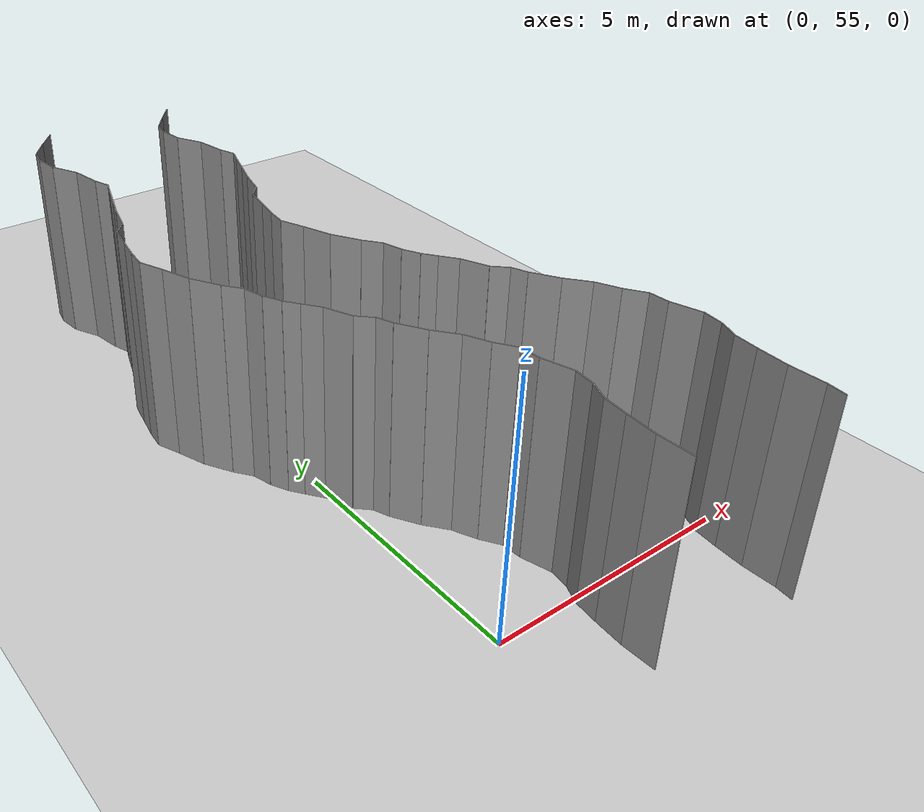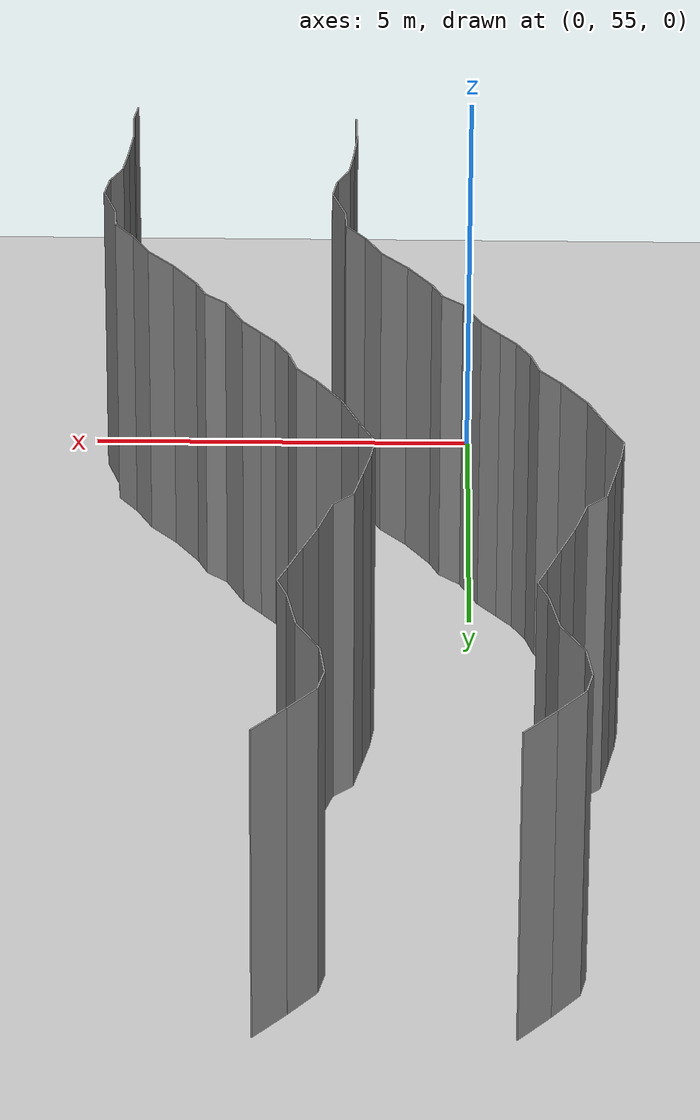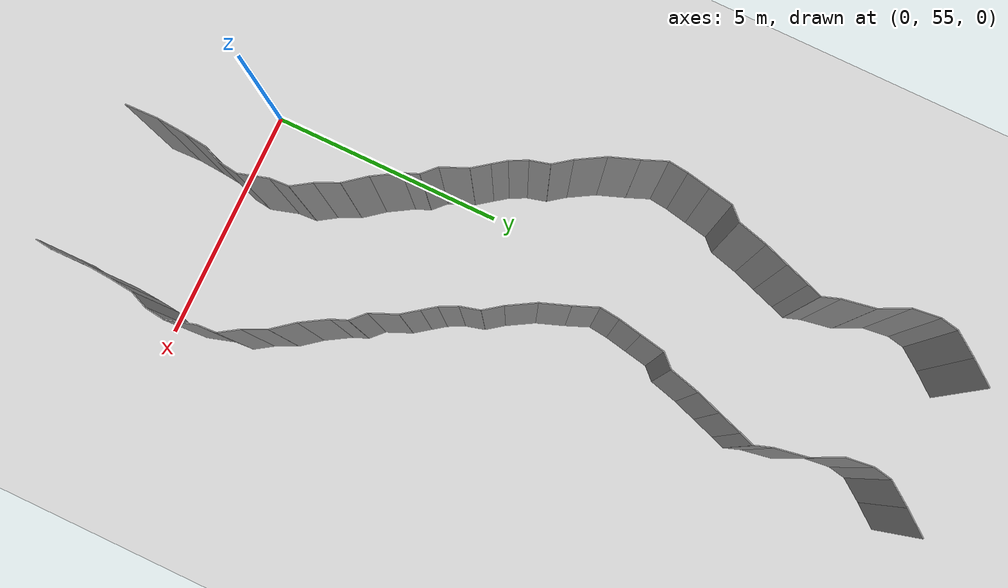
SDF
<sdf version="1.6">
 <world name="default">
  <model name="ground_plane">
   <static>1</static>
   <link name="link">
    <collision name="collision">
     <geometry><plane><normal>0 0 1</normal><size>200 200</size></plane></geometry>
     <surface><friction><ode><mu>100</mu><mu2>50</mu2></ode></friction></surface>
    </collision>
    <visual name="visual">
     <cast_shadows>0</cast_shadows>
     <geometry><plane><normal>0 0 1</normal><size>200 200</size></plane></geometry>
     <material>
      <script><uri>file://media/materials/scripts/gazebo.material</uri><name>Gazebo/Grey</name></script>
     </material>
    </visual>
   </link>
   <pose>0 100 0 0 -0 0</pose>
  </model>
  <model name="wall_225">
   <static>1</static>
   <pose>4.521135360977121 53.04856741819924 2 0 0 -0.12308509335069899</pose>
   <link name="link">
    <collision name="collision"><geometry><box><size>0.02 0.343392582881 4</size></box></geometry></collision>
    <visual name="visual">
     <material>
      <script><name>Gazebo/Grey</name><uri>file://media/materials/scripts/gazebo.material</uri></script>
     </material>
     <geometry><box><size>0.02 0.343392582881 4</size></box></geometry>
    </visual>
   </link>
  </model>
  <model name="wall_226">
   <static>1</static>
   <pose>1.5318800885487125 53.547236974459295 2 0 0 0.03147324776129947</pose>
   <link name="link">
    <collision name="collision"><geometry><box><size>0.02 0.6568697452 4</size></box></geometry></collision>
    <visual name="visual">
     <material>
      <script><name>Gazebo/Grey</name><uri>file://media/materials/scripts/gazebo.material</uri></script>
     </material>
     <geometry><box><size>0.02 0.6568697452 4</size></box></geometry>
    </visual>
   </link>
  </model>
  <model name="wall_227">
   <static>1</static>
   <pose>4.5318800885487125 53.547236974459295 2 0 0 0.03147324776129947</pose>
   <link name="link">
    <collision name="collision"><geometry><box><size>0.02 0.6568697452 4</size></box></geometry></collision>
    <visual name="visual">
     <material>
      <script><name>Gazebo/Grey</name><uri>file://media/materials/scripts/gazebo.material</uri></script>
     </material>
     <geometry><box><size>0.02 0.6568697452 4</size></box></geometry>
    </visual>
   </link>
  </model>
  <model name="wall_228">
   <static>1</static>
   <pose>1.5426626037815747 54.16363876123777 2 0 0 -0.07316163036023902</pose>
   <link name="link">
    <collision name="collision"><geometry><box><size>0.02 0.57780483411 4</size></box></geometry></collision>
    <visual name="visual">
     <material>
      <script><name>Gazebo/Grey</name><uri>file://media/materials/scripts/gazebo.material</uri></script>
     </material>
     <geometry><box><size>0.02 0.57780483411 4</size></box></geometry>
    </visual>
   </link>
  </model>
  <model name="wall_229">
   <static>1</static>
   <pose>4.542662603781575 54.16363876123777 2 0 0 -0.07316163036023902</pose>
   <link name="link">
    <collision name="collision"><geometry><box><size>0.02 0.57780483411 4</size></box></geometry></collision>
    <visual name="visual">
     <material>
      <script><name>Gazebo/Grey</name><uri>file://media/materials/scripts/gazebo.material</uri></script>
     </material>
     <geometry><box><size>0.02 0.57780483411 4</size></box></geometry>
    </visual>
   </link>
  </model>
  <model name="wall_230">
   <static>1</static>
   <pose>1.5891785267915404 54.68263615570174 2 0 0 -0.10957125878430612</pose>
   <link name="link">
    <collision name="collision"><geometry><box><size>0.02 0.464521351827 4</size></box></geometry></collision>
    <visual name="visual">
     <material>
      <script><name>Gazebo/Grey</name><uri>file://media/materials/scripts/gazebo.material</uri></script>
     </material>
     <geometry><box><size>0.02 0.464521351827 4</size></box></geometry>
    </visual>
   </link>
  </model>
  <model name="wall_231">
   <static>1</static>
   <pose>4.589178526791541 54.68263615570174 2 0 0 -0.10957125878430612</pose>
   <link name="link">
    <collision name="collision"><geometry><box><size>0.02 0.464521351827 4</size></box></geometry></collision>
    <visual name="visual">
     <material>
      <script><name>Gazebo/Grey</name><uri>file://media/materials/scripts/gazebo.material</uri></script>
     </material>
     <geometry><box><size>0.02 0.464521351827 4</size></box></geometry>
    </visual>
   </link>
  </model>
  <model name="wall_232">
   <static>1</static>
   <pose>1.6906803069146545 55.09257293223435 2 0 0 -0.4018672126688178</pose>
   <link name="link">
    <collision name="collision"><geometry><box><size>0.02 0.389139788585 4</size></box></geometry></collision>
    <visual name="visual">
     <material>
      <script><name>Gazebo/Grey</name><uri>file://media/materials/scripts/gazebo.material</uri></script>
     </material>
     <geometry><box><size>0.02 0.389139788585 4</size></box></geometry>
    </visual>
   </link>
  </model>
  <model name="wall_233">
   <static>1</static>
   <pose>4.690680306914654 55.09257293223435 2 0 0 -0.4018672126688178</pose>
   <link name="link">
    <collision name="collision"><geometry><box><size>0.02 0.389139788585 4</size></box></geometry></collision>
    <visual name="visual">
     <material>
      <script><name>Gazebo/Grey</name><uri>file://media/materials/scripts/gazebo.material</uri></script>
     </material>
     <geometry><box><size>0.02 0.389139788585 4</size></box></geometry>
    </visual>
   </link>
  </model>
  <model name="wall_234">
   <static>1</static>
   <pose>1.793089219820831 55.4680769140716 2 0 0 -0.1331216837401623</pose>
   <link name="link">
    <collision name="collision"><geometry><box><size>0.02 0.396377052906 4</size></box></geometry></collision>
    <visual name="visual">
     <material>
      <script><name>Gazebo/Grey</name><uri>file://media/materials/scripts/gazebo.material</uri></script>
     </material>
     <geometry><box><size>0.02 0.396377052906 4</size></box></geometry>
    </visual>
   </link>
  </model>
  <model name="wall_235">
   <static>1</static>
   <pose>4.793089219820831 55.4680769140716 2 0 0 -0.1331216837401623</pose>
   <link name="link">
    <collision name="collision"><geometry><box><size>0.02 0.396377052906 4</size></box></geometry></collision>
    <visual name="visual">
     <material>
      <script><name>Gazebo/Grey</name><uri>file://media/materials/scripts/gazebo.material</uri></script>
     </material>
     <geometry><box><size>0.02 0.396377052906 4</size></box></geometry>
    </visual>
   </link>
  </model>
  <model name="wall_236">
   <static>1</static>
   <pose>1.7317452355204639 55.95989317635096 2 0 0 0.2884567347603165</pose>
   <link name="link">
    <collision name="collision"><geometry><box><size>0.02 0.616222281323 4</size></box></geometry></collision>
    <visual name="visual">
     <material>
      <script><name>Gazebo/Grey</name><uri>file://media/materials/scripts/gazebo.material</uri></script>
     </material>
     <geometry><box><size>0.02 0.616222281323 4</size></box></geometry>
    </visual>
   </link>
  </model>
  <model name="wall_237">
   <static>1</static>
   <pose>4.731745235520464 55.95989317635096 2 0 0 0.2884567347603165</pose>
   <link name="link">
    <collision name="collision"><geometry><box><size>0.02 0.616222281323 4</size></box></geometry></collision>
    <visual name="visual">
     <material>
      <script><name>Gazebo/Grey</name><uri>file://media/materials/scripts/gazebo.material</uri></script>
     </material>
     <geometry><box><size>0.02 0.616222281323 4</size></box></geometry>
    </visual>
   </link>
  </model>
  <model name="wall_238">
   <static>1</static>
   <pose>1.6333251817699646 56.450081034170736 2 0 0 0.05523312908507078</pose>
   <link name="link">
    <collision name="collision"><geometry><box><size>0.02 0.390208305575 4</size></box></geometry></collision>
    <visual name="visual">
     <material>
      <script><name>Gazebo/Grey</name><uri>file://media/materials/scripts/gazebo.material</uri></script>
     </material>
     <geometry><box><size>0.02 0.390208305575 4</size></box></geometry>
    </visual>
   </link>
  </model>
  <model name="wall_239">
   <static>1</static>
   <pose>4.6333251817699646 56.450081034170736 2 0 0 0.05523312908507078</pose>
   <link name="link">
    <collision name="collision"><geometry><box><size>0.02 0.390208305575 4</size></box></geometry></collision>
    <visual name="visual">
     <material>
      <script><name>Gazebo/Grey</name><uri>file://media/materials/scripts/gazebo.material</uri></script>
     </material>
     <geometry><box><size>0.02 0.390208305575 4</size></box></geometry>
    </visual>
   </link>
  </model>
  <model name="wall_240">
   <static>1</static>
   <pose>1.4973220071269142 56.83547005621383 2 0 0 0.5813529927502384</pose>
   <link name="link">
    <collision name="collision"><geometry><box><size>0.02 0.456091278423 4</size></box></geometry></collision>
    <visual name="visual">
     <material>
      <script><name>Gazebo/Grey</name><uri>file://media/materials/scripts/gazebo.material</uri></script>
     </material>
     <geometry><box><size>0.02 0.456091278423 4</size></box></geometry>
    </visual>
   </link>
  </model>
  <model name="wall_241">
   <static>1</static>
   <pose>4.497322007126915 56.83547005621383 2 0 0 0.5813529927502384</pose>
   <link name="link">
    <collision name="collision"><geometry><box><size>0.02 0.456091278423 4</size></box></geometry></collision>
    <visual name="visual">
     <material>
      <script><name>Gazebo/Grey</name><uri>file://media/materials/scripts/gazebo.material</uri></script>
     </material>
     <geometry><box><size>0.02 0.456091278423 4</size></box></geometry>
    </visual>
   </link>
  </model>
  <model name="wall_242">
   <static>1</static>
   <pose>1.2655383694440323 57.252003256304434 2 0 0 0.44064451379595043</pose>
   <link name="link">
    <collision name="collision"><geometry><box><size>0.02 0.499627556329 4</size></box></geometry></collision>
    <visual name="visual">
     <material>
      <script><name>Gazebo/Grey</name><uri>file://media/materials/scripts/gazebo.material</uri></script>
     </material>
     <geometry><box><size>0.02 0.499627556329 4</size></box></geometry>
    </visual>
   </link>
  </model>
  <model name="wall_243">
   <static>1</static>
   <pose>4.265538369444032 57.252003256304434 2 0 0 0.44064451379595043</pose>
   <link name="link">
    <collision name="collision"><geometry><box><size>0.02 0.499627556329 4</size></box></geometry></collision>
    <visual name="visual">
     <material>
      <script><name>Gazebo/Grey</name><uri>file://media/materials/scripts/gazebo.material</uri></script>
     </material>
     <geometry><box><size>0.02 0.499627556329 4</size></box></geometry>
    </visual>
   </link>
  </model>
  <model name="wall_244">
   <static>1</static>
   <pose>0.9898197506736742 57.68989863021387 2 0 0 0.6736230090625466</pose>
   <link name="link">
    <collision name="collision"><geometry><box><size>0.02 0.542358246531 4</size></box></geometry></collision>
    <visual name="visual">
     <material>
      <script><name>Gazebo/Grey</name><uri>file://media/materials/scripts/gazebo.material</uri></script>
     </material>
     <geometry><box><size>0.02 0.542358246531 4</size></box></geometry>
    </visual>
   </link>
  </model>
  <model name="wall_245">
   <static>1</static>
   <pose>3.989819750673674 57.68989863021387 2 0 0 0.6736230090625466</pose>
   <link name="link">
    <collision name="collision"><geometry><box><size>0.02 0.542358246531 4</size></box></geometry></collision>
    <visual name="visual">
     <material>
      <script><name>Gazebo/Grey</name><uri>file://media/materials/scripts/gazebo.material</uri></script>
     </material>
     <geometry><box><size>0.02 0.542358246531 4</size></box></geometry>
    </visual>
   </link>
  </model>
  <model name="wall_246">
   <static>1</static>
   <pose>0.6641813570523917 58.159657947217745 2 0 0 0.5454866658374737</pose>
   <link name="link">
    <collision name="collision"><geometry><box><size>0.02 0.60316369019 4</size></box></geometry></collision>
    <visual name="visual">
     <material>
      <script><name>Gazebo/Grey</name><uri>file://media/materials/scripts/gazebo.material</uri></script>
     </material>
     <geometry><box><size>0.02 0.60316369019 4</size></box></geometry>
    </visual>
   </link>
  </model>
  <model name="wall_247">
   <static>1</static>
   <pose>3.664181357052392 58.159657947217745 2 0 0 0.5454866658374737</pose>
   <link name="link">
    <collision name="collision"><geometry><box><size>0.02 0.60316369019 4</size></box></geometry></collision>
    <visual name="visual">
     <material>
      <script><name>Gazebo/Grey</name><uri>file://media/materials/scripts/gazebo.material</uri></script>
     </material>
     <geometry><box><size>0.02 0.60316369019 4</size></box></geometry>
    </visual>
   </link>
  </model>
  <model name="wall_248">
   <static>1</static>
   <pose>0.4463893324645613 58.5715226269095 2 0 0 0.3788324878437734</pose>
   <link name="link">
    <collision name="collision"><geometry><box><size>0.02 0.331612141008 4</size></box></geometry></collision>
    <visual name="visual">
     <material>
      <script><name>Gazebo/Grey</name><uri>file://media/materials/scripts/gazebo.material</uri></script>
     </material>
     <geometry><box><size>0.02 0.331612141008 4</size></box></geometry>
    </visual>
   </link>
  </model>
  <model name="wall_249">
   <static>1</static>
   <pose>3.446389332464561 58.5715226269095 2 0 0 0.3788324878437734</pose>
   <link name="link">
    <collision name="collision"><geometry><box><size>0.02 0.331612141008 4</size></box></geometry></collision>
    <visual name="visual">
     <material>
      <script><name>Gazebo/Grey</name><uri>file://media/materials/scripts/gazebo.material</uri></script>
     </material>
     <geometry><box><size>0.02 0.331612141008 4</size></box></geometry>
    </visual>
   </link>
  </model>
  <model name="wall_250">
   <static>1</static>
   <pose>0.2506414810446743 58.8559154217721 2 0 0 0.8008214283508729</pose>
   <link name="link">
    <collision name="collision"><geometry><box><size>0.02 0.374485386806 4</size></box></geometry></collision>
    <visual name="visual">
     <material>
      <script><name>Gazebo/Grey</name><uri>file://media/materials/scripts/gazebo.material</uri></script>
     </material>
     <geometry><box><size>0.02 0.374485386806 4</size></box></geometry>
    </visual>
   </link>
  </model>
  <model name="wall_251">
   <static>1</static>
   <pose>3.250641481044674 58.8559154217721 2 0 0 0.8008214283508729</pose>
   <link name="link">
    <collision name="collision"><geometry><box><size>0.02 0.374485386806 4</size></box></geometry></collision>
    <visual name="visual">
     <material>
      <script><name>Gazebo/Grey</name><uri>file://media/materials/scripts/gazebo.material</uri></script>
     </material>
     <geometry><box><size>0.02 0.374485386806 4</size></box></geometry>
    </visual>
   </link>
  </model>
  <model name="wall_252">
   <static>1</static>
   <pose>0.0021937016465015113 59.250471920405964 2 0 0 0.40740412721964625</pose>
   <link name="link">
    <collision name="collision"><geometry><box><size>0.02 0.575533245916 4</size></box></geometry></collision>
    <visual name="visual">
     <material>
      <script><name>Gazebo/Grey</name><uri>file://media/materials/scripts/gazebo.material</uri></script>
     </material>
     <geometry><box><size>0.02 0.575533245916 4</size></box></geometry>
    </visual>
   </link>
  </model>
  <model name="wall_253">
   <static>1</static>
   <pose>3.0021937016465015 59.250471920405964 2 0 0 0.40740412721964625</pose>
   <link name="link">
    <collision name="collision"><geometry><box><size>0.02 0.575533245916 4</size></box></geometry></collision>
    <visual name="visual">
     <material>
      <script><name>Gazebo/Grey</name><uri>file://media/materials/scripts/gazebo.material</uri></script>
     </material>
     <geometry><box><size>0.02 0.575533245916 4</size></box></geometry>
    </visual>
   </link>
  </model>
  <model name="wall_254">
   <static>1</static>
   <pose>-0.23026401594293788 59.6739307323708 2 0 0 0.6394815647355245</pose>
   <link name="link">
    <collision name="collision"><geometry><box><size>0.02 0.396919573155 4</size></box></geometry></collision>
    <visual name="visual">
     <material>
      <script><name>Gazebo/Grey</name><uri>file://media/materials/scripts/gazebo.material</uri></script>
     </material>
     <geometry><box><size>0.02 0.396919573155 4</size></box></geometry>
    </visual>
   </link>
  </model>
  <model name="wall_255">
   <static>1</static>
   <pose>2.7697359840570623 59.6739307323708 2 0 0 0.6394815647355245</pose>
   <link name="link">
    <collision name="collision"><geometry><box><size>0.02 0.396919573155 4</size></box></geometry></collision>
    <visual name="visual">
     <material>
      <script><name>Gazebo/Grey</name><uri>file://media/materials/scripts/gazebo.material</uri></script>
     </material>
     <geometry><box><size>0.02 0.396919573155 4</size></box></geometry>
    </visual>
   </link>
  </model>
  <model name="wall_256">
   <static>1</static>
   <pose>-0.44527389648842214 59.96493190527335 2 0 0 0.6325122761577108</pose>
   <link name="link">
    <collision name="collision"><geometry><box><size>0.02 0.326717092673 4</size></box></geometry></collision>
    <visual name="visual">
     <material>
      <script><name>Gazebo/Grey</name><uri>file://media/materials/scripts/gazebo.material</uri></script>
     </material>
     <geometry><box><size>0.02 0.326717092673 4</size></box></geometry>
    </visual>
   </link>
  </model>
  <model name="wall_257">
   <static>1</static>
   <pose>2.554726103511578 59.96493190527335 2 0 0 0.6325122761577108</pose>
   <link name="link">
    <collision name="collision"><geometry><box><size>0.02 0.326717092673 4</size></box></geometry></collision>
    <visual name="visual">
     <material>
      <script><name>Gazebo/Grey</name><uri>file://media/materials/scripts/gazebo.material</uri></script>
     </material>
     <geometry><box><size>0.02 0.326717092673 4</size></box></geometry>
    </visual>
   </link>
  </model>
  <model name="wall_258">
   <static>1</static>
   <pose>-0.6277646872286103 60.26754599050072 2 0 0 0.46593275365028297</pose>
   <link name="link">
    <collision name="collision"><geometry><box><size>0.02 0.382488319074 4</size></box></geometry></collision>
    <visual name="visual">
     <material>
      <script><name>Gazebo/Grey</name><uri>file://media/materials/scripts/gazebo.material</uri></script>
     </material>
     <geometry><box><size>0.02 0.382488319074 4</size></box></geometry>
    </visual>
   </link>
  </model>
  <model name="wall_259">
   <static>1</static>
   <pose>2.3722353127713895 60.26754599050072 2 0 0 0.46593275365028297</pose>
   <link name="link">
    <collision name="collision"><geometry><box><size>0.02 0.382488319074 4</size></box></geometry></collision>
    <visual name="visual">
     <material>
      <script><name>Gazebo/Grey</name><uri>file://media/materials/scripts/gazebo.material</uri></script>
     </material>
     <geometry><box><size>0.02 0.382488319074 4</size></box></geometry>
    </visual>
   </link>
  </model>
  <model name="wall_260">
   <static>1</static>
   <pose>-0.7669233280408421 60.638004558542946 2 0 0 0.2606688030595077</pose>
   <link name="link">
    <collision name="collision"><geometry><box><size>0.02 0.413158346479 4</size></box></geometry></collision>
    <visual name="visual">
     <material>
      <script><name>Gazebo/Grey</name><uri>file://media/materials/scripts/gazebo.material</uri></script>
     </material>
     <geometry><box><size>0.02 0.413158346479 4</size></box></geometry>
    </visual>
   </link>
  </model>
  <model name="wall_261">
   <static>1</static>
   <pose>2.233076671959158 60.638004558542946 2 0 0 0.2606688030595077</pose>
   <link name="link">
    <collision name="collision"><geometry><box><size>0.02 0.413158346479 4</size></box></geometry></collision>
    <visual name="visual">
     <material>
      <script><name>Gazebo/Grey</name><uri>file://media/materials/scripts/gazebo.material</uri></script>
     </material>
     <geometry><box><size>0.02 0.413158346479 4</size></box></geometry>
    </visual>
   </link>
  </model>
  <model name="wall_262">
   <static>1</static>
   <pose>-0.9489604529135394 61.010785571165016 2 0 0 0.6394634792404611</pose>
   <link name="link">
    <collision name="collision"><geometry><box><size>0.02 0.431647729304 4</size></box></geometry></collision>
    <visual name="visual">
     <material>
      <script><name>Gazebo/Grey</name><uri>file://media/materials/scripts/gazebo.material</uri></script>
     </material>
     <geometry><box><size>0.02 0.431647729304 4</size></box></geometry>
    </visual>
   </link>
  </model>
  <model name="wall_263">
   <static>1</static>
   <pose>2.051039547086461 61.010785571165016 2 0 0 0.6394634792404611</pose>
   <link name="link">
    <collision name="collision"><geometry><box><size>0.02 0.431647729304 4</size></box></geometry></collision>
    <visual name="visual">
     <material>
      <script><name>Gazebo/Grey</name><uri>file://media/materials/scripts/gazebo.material</uri></script>
     </material>
     <geometry><box><size>0.02 0.431647729304 4</size></box></geometry>
    </visual>
   </link>
  </model>
  <model name="wall_264">
   <static>1</static>
   <pose>-1.2364163874082608 61.45495242658995 2 0 0 0.529682114619405</pose>
   <link name="link">
    <collision name="collision"><geometry><box><size>0.02 0.628033502165 4</size></box></geometry></collision>
    <visual name="visual">
     <material>
      <script><name>Gazebo/Grey</name><uri>file://media/materials/scripts/gazebo.material</uri></script>
     </material>
     <geometry><box><size>0.02 0.628033502165 4</size></box></geometry>
    </visual>
   </link>
  </model>
  <model name="wall_265">
   <static>1</static>
   <pose>1.7635836125917392 61.45495242658995 2 0 0 0.529682114619405</pose>
   <link name="link">
    <collision name="collision"><geometry><box><size>0.02 0.628033502165 4</size></box></geometry></collision>
    <visual name="visual">
     <material>
      <script><name>Gazebo/Grey</name><uri>file://media/materials/scripts/gazebo.material</uri></script>
     </material>
     <geometry><box><size>0.02 0.628033502165 4</size></box></geometry>
    </visual>
   </link>
  </model>
  <model name="wall_266">
   <static>1</static>
   <pose>-1.5013281441844726 62.01570366291428 2 0 0 0.3514594533550606</pose>
   <link name="link">
    <collision name="collision"><geometry><box><size>0.02 0.617262288031 4</size></box></geometry></collision>
    <visual name="visual">
     <material>
      <script><name>Gazebo/Grey</name><uri>file://media/materials/scripts/gazebo.material</uri></script>
     </material>
     <geometry><box><size>0.02 0.617262288031 4</size></box></geometry>
    </visual>
   </link>
  </model>
  <model name="wall_267">
   <static>1</static>
   <pose>1.4986718558155274 62.01570366291428 2 0 0 0.3514594533550606</pose>
   <link name="link">
    <collision name="collision"><geometry><box><size>0.02 0.617262288031 4</size></box></geometry></collision>
    <visual name="visual">
     <material>
      <script><name>Gazebo/Grey</name><uri>file://media/materials/scripts/gazebo.material</uri></script>
     </material>
     <geometry><box><size>0.02 0.617262288031 4</size></box></geometry>
    </visual>
   </link>
  </model>
  <model name="wall_268">
   <static>1</static>
   <pose>-1.705795614949101 62.54658127042579 2 0 0 0.38682029565798454</pose>
   <link name="link">
    <collision name="collision"><geometry><box><size>0.02 0.520698065118 4</size></box></geometry></collision>
    <visual name="visual">
     <material>
      <script><name>Gazebo/Grey</name><uri>file://media/materials/scripts/gazebo.material</uri></script>
     </material>
     <geometry><box><size>0.02 0.520698065118 4</size></box></geometry>
    </visual>
   </link>
  </model>
  <model name="wall_269">
   <static>1</static>
   <pose>1.294204385050899 62.54658127042579 2 0 0 0.38682029565798454</pose>
   <link name="link">
    <collision name="collision"><geometry><box><size>0.02 0.520698065118 4</size></box></geometry></collision>
    <visual name="visual">
     <material>
      <script><name>Gazebo/Grey</name><uri>file://media/materials/scripts/gazebo.material</uri></script>
     </material>
     <geometry><box><size>0.02 0.520698065118 4</size></box></geometry>
    </visual>
   </link>
  </model>
  <model name="wall_270">
   <static>1</static>
   <pose>-1.780647243362121 62.9915844499877 2 0 0 -0.11409273503173797</pose>
   <link name="link">
    <collision name="collision"><geometry><box><size>0.02 0.410449517208 4</size></box></geometry></collision>
    <visual name="visual">
     <material>
      <script><name>Gazebo/Grey</name><uri>file://media/materials/scripts/gazebo.material</uri></script>
     </material>
     <geometry><box><size>0.02 0.410449517208 4</size></box></geometry>
    </visual>
   </link>
  </model>
  <model name="wall_271">
   <static>1</static>
   <pose>1.219352756637879 62.9915844499877 2 0 0 -0.11409273503173797</pose>
   <link name="link">
    <collision name="collision"><geometry><box><size>0.02 0.410449517208 4</size></box></geometry></collision>
    <visual name="visual">
     <material>
      <script><name>Gazebo/Grey</name><uri>file://media/materials/scripts/gazebo.material</uri></script>
     </material>
     <geometry><box><size>0.02 0.410449517208 4</size></box></geometry>
    </visual>
   </link>
  </model>
  <model name="wall_272">
   <static>1</static>
   <pose>-1.7113284598682432 63.43216076048097 2 0 0 -0.19177382081852729</pose>
   <link name="link">
    <collision name="collision"><geometry><box><size>0.02 0.48221170422 4</size></box></geometry></collision>
    <visual name="visual">
     <material>
      <script><name>Gazebo/Grey</name><uri>file://media/materials/scripts/gazebo.material</uri></script>
     </material>
     <geometry><box><size>0.02 0.48221170422 4</size></box></geometry>
    </visual>
   </link>
  </model>
  <model name="wall_273">
   <static>1</static>
   <pose>1.2886715401317568 63.43216076048097 2 0 0 -0.19177382081852729</pose>
   <link name="link">
    <collision name="collision"><geometry><box><size>0.02 0.48221170422 4</size></box></geometry></collision>
    <visual name="visual">
     <material>
      <script><name>Gazebo/Grey</name><uri>file://media/materials/scripts/gazebo.material</uri></script>
     </material>
     <geometry><box><size>0.02 0.48221170422 4</size></box></geometry>
    </visual>
   </link>
  </model>
  <model name="wall_274">
   <static>1</static>
   <pose>-1.6156633730305816 63.92588714911311 2 0 0 -0.19103597612592355</pose>
   <link name="link">
    <collision name="collision"><geometry><box><size>0.02 0.523606549812 4</size></box></geometry></collision>
    <visual name="visual">
     <material>
      <script><name>Gazebo/Grey</name><uri>file://media/materials/scripts/gazebo.material</uri></script>
     </material>
     <geometry><box><size>0.02 0.523606549812 4</size></box></geometry>
    </visual>
   </link>
  </model>
  <model name="wall_275">
   <static>1</static>
   <pose>1.3843366269694184 63.92588714911311 2 0 0 -0.19103597612592355</pose>
   <link name="link">
    <collision name="collision"><geometry><box><size>0.02 0.523606549812 4</size></box></geometry></collision>
    <visual name="visual">
     <material>
      <script><name>Gazebo/Grey</name><uri>file://media/materials/scripts/gazebo.material</uri></script>
     </material>
     <geometry><box><size>0.02 0.523606549812 4</size></box></geometry>
    </visual>
   </link>
  </model>
  <model name="wall_276">
   <static>1</static>
   <pose>-1.4451274575894326 64.31001936062651 2 0 0 -0.7601293007275328</pose>
   <link name="link">
    <collision name="collision"><geometry><box><size>0.02 0.350720072746 4</size></box></geometry></collision>
    <visual name="visual">
     <material>
      <script><name>Gazebo/Grey</name><uri>file://media/materials/scripts/gazebo.material</uri></script>
     </material>
     <geometry><box><size>0.02 0.350720072746 4</size></box></geometry>
    </visual>
   </link>
  </model>
  <model name="wall_277">
   <static>1</static>
   <pose>1.5548725424105674 64.31001936062651 2 0 0 -0.7601293007275328</pose>
   <link name="link">
    <collision name="collision"><geometry><box><size>0.02 0.350720072746 4</size></box></geometry></collision>
    <visual name="visual">
     <material>
      <script><name>Gazebo/Grey</name><uri>file://media/materials/scripts/gazebo.material</uri></script>
     </material>
     <geometry><box><size>0.02 0.350720072746 4</size></box></geometry>
    </visual>
   </link>
  </model>
  <model name="wall_278">
   <static>1</static>
   <pose>-1.2424476685226182 64.74474901542601 2 0 0 -0.26004774652542945</pose>
   <link name="link">
    <collision name="collision"><geometry><box><size>0.02 0.636682751767 4</size></box></geometry></collision>
    <visual name="visual">
     <material>
      <script><name>Gazebo/Grey</name><uri>file://media/materials/scripts/gazebo.material</uri></script>
     </material>
     <geometry><box><size>0.02 0.636682751767 4</size></box></geometry>
    </visual>
   </link>
  </model>
  <model name="wall_279">
   <static>1</static>
   <pose>1.7575523314773818 64.74474901542601 2 0 0 -0.26004774652542945</pose>
   <link name="link">
    <collision name="collision"><geometry><box><size>0.02 0.636682751767 4</size></box></geometry></collision>
    <visual name="visual">
     <material>
      <script><name>Gazebo/Grey</name><uri>file://media/materials/scripts/gazebo.material</uri></script>
     </material>
     <geometry><box><size>0.02 0.636682751767 4</size></box></geometry>
    </visual>
   </link>
  </model>
  <model name="wall_280">
   <static>1</static>
   <pose>-1.0742758765486833 65.30246194546149 2 0 0 -0.3323631939048959</pose>
   <link name="link">
    <collision name="collision"><geometry><box><size>0.02 0.529105724296 4</size></box></geometry></collision>
    <visual name="visual">
     <material>
      <script><name>Gazebo/Grey</name><uri>file://media/materials/scripts/gazebo.material</uri></script>
     </material>
     <geometry><box><size>0.02 0.529105724296 4</size></box></geometry>
    </visual>
   </link>
  </model>
  <model name="wall_281">
   <static>1</static>
   <pose>1.9257241234513167 65.30246194546149 2 0 0 -0.3323631939048959</pose>
   <link name="link">
    <collision name="collision"><geometry><box><size>0.02 0.529105724296 4</size></box></geometry></collision>
    <visual name="visual">
     <material>
      <script><name>Gazebo/Grey</name><uri>file://media/materials/scripts/gazebo.material</uri></script>
     </material>
     <geometry><box><size>0.02 0.529105724296 4</size></box></geometry>
    </visual>
   </link>
  </model>
  <model name="wall_282">
   <static>1</static>
   <pose>-0.9040182594878716 65.80289151840475 2 0 0 -0.3235050606859876</pose>
   <link name="link">
    <collision name="collision"><geometry><box><size>0.02 0.528103611528 4</size></box></geometry></collision>
    <visual name="visual">
     <material>
      <script><name>Gazebo/Grey</name><uri>file://media/materials/scripts/gazebo.material</uri></script>
     </material>
     <geometry><box><size>0.02 0.528103611528 4</size></box></geometry>
    </visual>
   </link>
  </model>
  <model name="wall_283">
   <static>1</static>
   <pose>2.095981740512128 65.80289151840475 2 0 0 -0.3235050606859876</pose>
   <link name="link">
    <collision name="collision"><geometry><box><size>0.02 0.528103611528 4</size></box></geometry></collision>
    <visual name="visual">
     <material>
      <script><name>Gazebo/Grey</name><uri>file://media/materials/scripts/gazebo.material</uri></script>
     </material>
     <geometry><box><size>0.02 0.528103611528 4</size></box></geometry>
    </visual>
   </link>
  </model>
  <model name="wall_284">
   <static>1</static>
   <pose>-0.7665324729758466 66.20096106018934 2 0 0 -0.3477624877424924</pose>
   <link name="link">
    <collision name="collision"><geometry><box><size>0.02 0.314241004049 4</size></box></geometry></collision>
    <visual name="visual">
     <material>
      <script><name>Gazebo/Grey</name><uri>file://media/materials/scripts/gazebo.material</uri></script>
     </material>
     <geometry><box><size>0.02 0.314241004049 4</size></box></geometry>
    </visual>
   </link>
  </model>
  <model name="wall_285">
   <static>1</static>
   <pose>2.2334675270241533 66.20096106018934 2 0 0 -0.3477624877424924</pose>
   <link name="link">
    <collision name="collision"><geometry><box><size>0.02 0.314241004049 4</size></box></geometry></collision>
    <visual name="visual">
     <material>
      <script><name>Gazebo/Grey</name><uri>file://media/materials/scripts/gazebo.material</uri></script>
     </material>
     <geometry><box><size>0.02 0.314241004049 4</size></box></geometry>
    </visual>
   </link>
  </model>
  <model name="wall_286">
   <static>1</static>
   <pose>-0.7730611883976898 66.52302052991247 2 0 0 0.3318328266041908</pose>
   <link name="link">
    <collision name="collision"><geometry><box><size>0.02 0.368808844284 4</size></box></geometry></collision>
    <visual name="visual">
     <material>
      <script><name>Gazebo/Grey</name><uri>file://media/materials/scripts/gazebo.material</uri></script>
     </material>
     <geometry><box><size>0.02 0.368808844284 4</size></box></geometry>
    </visual>
   </link>
  </model>
  <model name="wall_287">
   <static>1</static>
   <pose>2.2269388116023103 66.52302052991247 2 0 0 0.3318328266041908</pose>
   <link name="link">
    <collision name="collision"><geometry><box><size>0.02 0.368808844284 4</size></box></geometry></collision>
    <visual name="visual">
     <material>
      <script><name>Gazebo/Grey</name><uri>file://media/materials/scripts/gazebo.material</uri></script>
     </material>
     <geometry><box><size>0.02 0.368808844284 4</size></box></geometry>
    </visual>
   </link>
  </model>
  <model name="wall_288">
   <static>1</static>
   <pose>-0.8915333555573435 67.03328094086014 2 0 0 0.17212554148430154</pose>
   <link name="link">
    <collision name="collision"><geometry><box><size>0.02 0.681908267078 4</size></box></geometry></collision>
    <visual name="visual">
     <material>
      <script><name>Gazebo/Grey</name><uri>file://media/materials/scripts/gazebo.material</uri></script>
     </material>
     <geometry><box><size>0.02 0.681908267078 4</size></box></geometry>
    </visual>
   </link>
  </model>
  <model name="wall_289">
   <static>1</static>
   <pose>2.1084666444426565 67.03328094086014 2 0 0 0.17212554148430154</pose>
   <link name="link">
    <collision name="collision"><geometry><box><size>0.02 0.681908267078 4</size></box></geometry></collision>
    <visual name="visual">
     <material>
      <script><name>Gazebo/Grey</name><uri>file://media/materials/scripts/gazebo.material</uri></script>
     </material>
     <geometry><box><size>0.02 0.681908267078 4</size></box></geometry>
    </visual>
   </link>
  </model>
  <model name="wall_290">
   <static>1</static>
   <pose>-1.0917602384616842 67.65815210996035 2 0 0 0.456288581759731</pose>
   <link name="link">
    <collision name="collision"><geometry><box><size>0.02 0.643772458223 4</size></box></geometry></collision>
    <visual name="visual">
     <material>
      <script><name>Gazebo/Grey</name><uri>file://media/materials/scripts/gazebo.material</uri></script>
     </material>
     <geometry><box><size>0.02 0.643772458223 4</size></box></geometry>
    </visual>
   </link>
  </model>
  <model name="wall_291">
   <static>1</static>
   <pose>1.9082397615383158 67.65815210996035 2 0 0 0.456288581759731</pose>
   <link name="link">
    <collision name="collision"><geometry><box><size>0.02 0.643772458223 4</size></box></geometry></collision>
    <visual name="visual">
     <material>
      <script><name>Gazebo/Grey</name><uri>file://media/materials/scripts/gazebo.material</uri></script>
     </material>
     <geometry><box><size>0.02 0.643772458223 4</size></box></geometry>
    </visual>
   </link>
  </model>
  <model name="wall_292">
   <static>1</static>
   <pose>-1.2656061829655472 68.22433954676998 2 0 0 0.11497733635905726</pose>
   <link name="link">
    <collision name="collision"><geometry><box><size>0.02 0.558149446969 4</size></box></geometry></collision>
    <visual name="visual">
     <material>
      <script><name>Gazebo/Grey</name><uri>file://media/materials/scripts/gazebo.material</uri></script>
     </material>
     <geometry><box><size>0.02 0.558149446969 4</size></box></geometry>
    </visual>
   </link>
  </model>
  <model name="wall_293">
   <static>1</static>
   <pose>1.7343938170344528 68.22433954676998 2 0 0 0.11497733635905726</pose>
   <link name="link">
    <collision name="collision"><geometry><box><size>0.02 0.558149446969 4</size></box></geometry></collision>
    <visual name="visual">
     <material>
      <script><name>Gazebo/Grey</name><uri>file://media/materials/scripts/gazebo.material</uri></script>
     </material>
     <geometry><box><size>0.02 0.558149446969 4</size></box></geometry>
    </visual>
   </link>
  </model>
  <model name="wall_294">
   <static>1</static>
   <pose>-1.2613682081292206 68.68579977860074 2 0 0 -0.1943088915480931</pose>
   <link name="link">
    <collision name="collision"><geometry><box><size>0.02 0.375523101009 4</size></box></geometry></collision>
    <visual name="visual">
     <material>
      <script><name>Gazebo/Grey</name><uri>file://media/materials/scripts/gazebo.material</uri></script>
     </material>
     <geometry><box><size>0.02 0.375523101009 4</size></box></geometry>
    </visual>
   </link>
  </model>
  <model name="wall_295">
   <static>1</static>
   <pose>1.7386317918707794 68.68579977860074 2 0 0 -0.1943088915480931</pose>
   <link name="link">
    <collision name="collision"><geometry><box><size>0.02 0.375523101009 4</size></box></geometry></collision>
    <visual name="visual">
     <material>
      <script><name>Gazebo/Grey</name><uri>file://media/materials/scripts/gazebo.material</uri></script>
     </material>
     <geometry><box><size>0.02 0.375523101009 4</size></box></geometry>
    </visual>
   </link>
  </model>
  <model name="wall_296">
   <static>1</static>
   <pose>-1.055609355707864 69.1026507371744 2 0 0 -0.6297067205989568</pose>
   <link name="link">
    <collision name="collision"><geometry><box><size>0.02 0.575656404434 4</size></box></geometry></collision>
    <visual name="visual">
     <material>
      <script><name>Gazebo/Grey</name><uri>file://media/materials/scripts/gazebo.material</uri></script>
     </material>
     <geometry><box><size>0.02 0.575656404434 4</size></box></geometry>
    </visual>
   </link>
  </model>
  <model name="wall_297">
   <static>1</static>
   <pose>1.944390644292136 69.1026507371744 2 0 0 -0.6297067205989568</pose>
   <link name="link">
    <collision name="collision"><geometry><box><size>0.02 0.575656404434 4</size></box></geometry></collision>
    <visual name="visual">
     <material>
      <script><name>Gazebo/Grey</name><uri>file://media/materials/scripts/gazebo.material</uri></script>
     </material>
     <geometry><box><size>0.02 0.575656404434 4</size></box></geometry>
    </visual>
   </link>
  </model>
  <model name="wall_298">
   <static>1</static>
   <pose>-0.6928163126176649 69.57831282346444 2 0 0 -0.6718676538882192</pose>
   <link name="link">
    <collision name="collision"><geometry><box><size>0.02 0.621059208171 4</size></box></geometry></collision>
    <visual name="visual">
     <material>
      <script><name>Gazebo/Grey</name><uri>file://media/materials/scripts/gazebo.material</uri></script>
     </material>
     <geometry><box><size>0.02 0.621059208171 4</size></box></geometry>
    </visual>
   </link>
  </model>
  <model name="wall_299">
   <static>1</static>
   <pose>2.3071836873823353 69.57831282346444 2 0 0 -0.6718676538882192</pose>
   <link name="link">
    <collision name="collision"><geometry><box><size>0.02 0.621059208171 4</size></box></geometry></collision>
    <visual name="visual">
     <material>
      <script><name>Gazebo/Grey</name><uri>file://media/materials/scripts/gazebo.material</uri></script>
     </material>
     <geometry><box><size>0.02 0.621059208171 4</size></box></geometry>
    </visual>
   </link>
  </model>
 </world>
</sdf>
